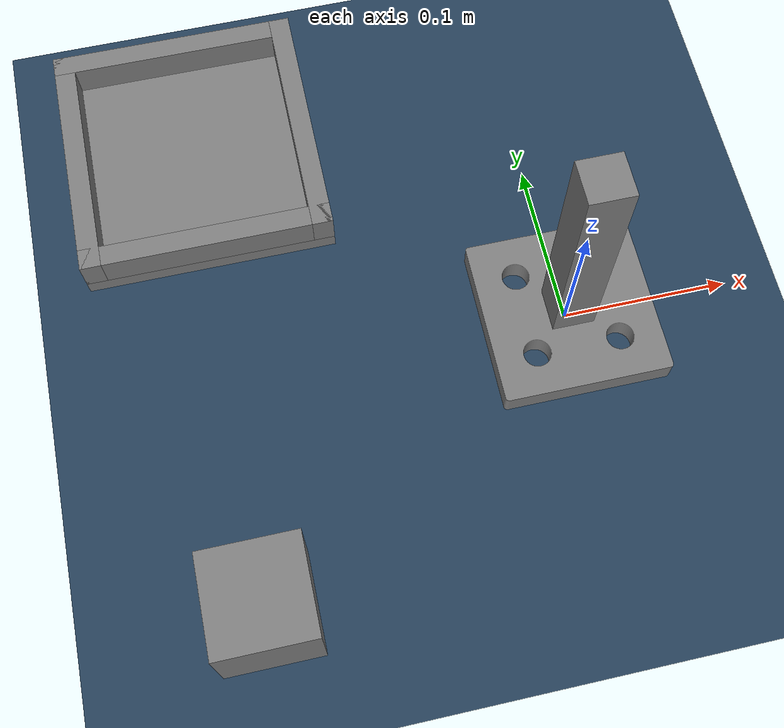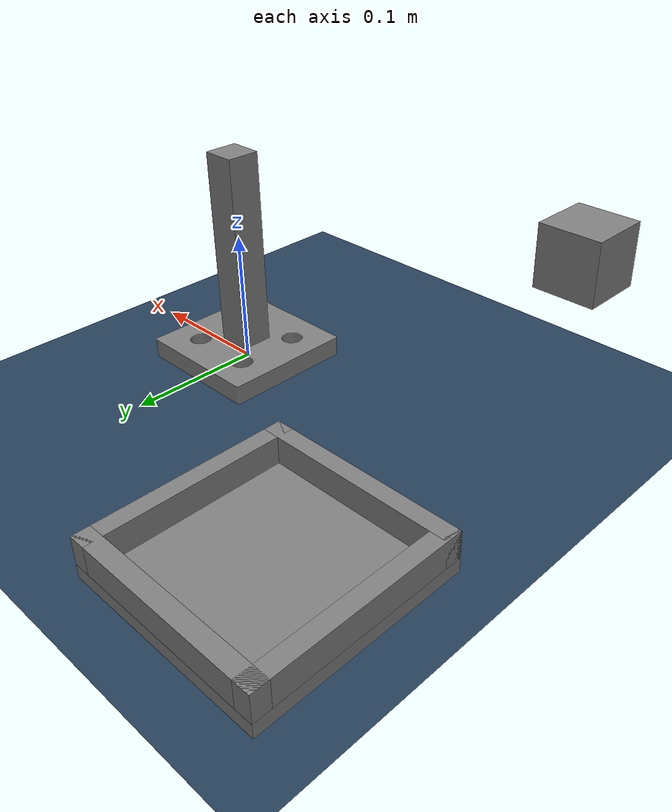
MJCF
<mujoco model="nrc_setup">

    <compiler angle="radian" meshdir="assets" autolimits="true" />

    <asset>
        <mesh name="box" file="box_1.stl" scale="0.001 0.001 0.001" />
        <mesh name="base" file="base_7.stl" scale="0.001 0.001 0.001" />
        <mesh name="origin_base" file="origin_base.stl" scale="0.001 0.001 0.001" />
        <texture type="skybox" builtin="gradient" rgb1="0.3 0.5 0.7" rgb2="0 0 0" width="512"
            height="3072" />
        <texture type="2d" name="groundplane" builtin="checker" mark="edge" rgb1="0.2 0.3 0.4"
            rgb2="0.1 0.2 0.3" markrgb="0.8 0.8 0.8" width="300" height="300" />
        <material name="groundplane" texture="groundplane" texuniform="true" texrepeat="5 5"
            reflectance="0.2" />
    </asset>

    <worldbody>
        <body name="box" pos="-0.2 -0.15 0.1">
            <geom name="box_geom" type="box" size="0.025 0.025 0.025" solref="0.000001 1" />
            <freejoint/>
        </body>
        <body name="base" pos="-0.2 0.15 0">
            <freejoint />
            <geom type="box" size="0.075 0.075 0.005" pos="0 0 0.01"/>
            <geom type="box" size="0.00625 0.075 0.01" pos="-0.06875 0 0.025" />
            <geom type="box" size="0.00625 0.075 0.01" pos="0.06875 0 0.025" />
            <geom type="box" size="0.075 0.00625 0.01" pos="0 -0.06875 0.025" />
            <geom type="box" size="0.075 0.00625 0.01" pos="0 0.06875 0.025" />
        </body>
        <body name="origin_base">
            <geom name="origin_base_geom" type="mesh" mesh="origin_base" solref="0.000001 1" />
        </body>
        <light pos="0 0 1.5" dir="0 0 -1" directional="true" />
        <geom name="floor" size="0 0 0.5" type="plane" material="groundplane"
            solimp="0.0 0.0 0.0 0.0 1" />

    </worldbody>

</mujoco>
